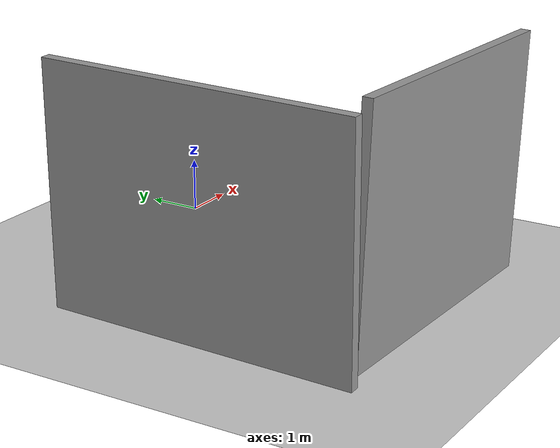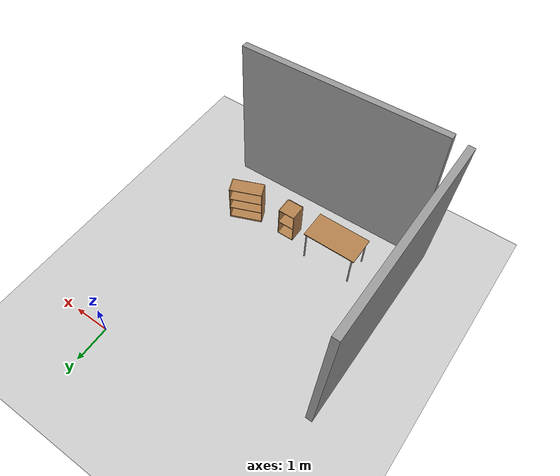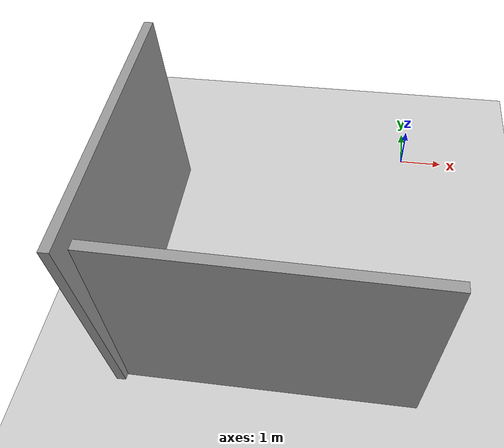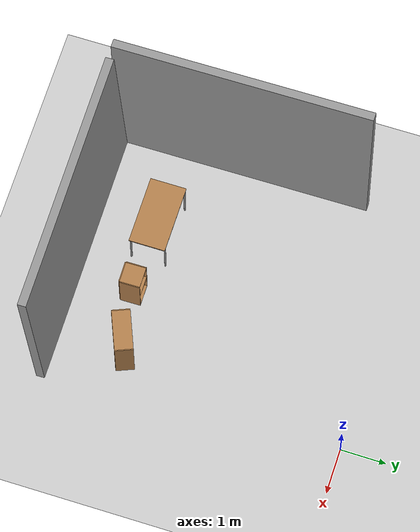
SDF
<sdf version="1.6">
 <world name="default">
  <light name="sun" type="directional">
   <pose>0 0 10 0 -0 0</pose>
   <diffuse>0.8 0.8 0.8 1</diffuse>
   <specular>0.2 0.2 0.2 1</specular>
   <attenuation>
    <range>1000</range>
    <constant>0.9</constant>
    <linear>0.01</linear>
    <quadratic>0.001</quadratic>
   </attenuation>
   <direction>-0.5 0.1 -0.9</direction>
  </light>
  <model name="ground_plane">
   <static>1</static>
   <link name="link">
    <collision name="collision">
     <geometry><plane><normal>0 0 1</normal><size>100 100</size></plane></geometry>
     <surface>
      <contact><collide_bitmask>65535</collide_bitmask></contact>
      <friction><ode><mu>100</mu><mu2>50</mu2></ode></friction>
     </surface>
    </collision>
    <visual name="visual">
     <cast_shadows>0</cast_shadows>
     <geometry><plane><normal>0 0 1</normal><size>100 100</size></plane></geometry>
     <material>
      <script><uri>file://media/materials/scripts/gazebo.material</uri><name>Gazebo/Grey</name></script>
     </material>
    </visual>
   </link>
  </model>
  <gravity>0 0 -9.8</gravity>
  <magnetic_field>6e-06 2.3e-05 -4.2e-05</magnetic_field>
  <atmosphere type="adiabatic"/>
  <physics name="default_physics" default="0" type="ode">
   <max_step_size>0.001</max_step_size>
   <real_time_factor>1</real_time_factor>
   <real_time_update_rate>1000</real_time_update_rate>
  </physics>
  <scene><ambient>0.4 0.4 0.4 1</ambient><background>0.7 0.7 0.7 1</background><shadows>1</shadows></scene>
  <audio><device>default</device></audio>
  <spherical_coordinates>
   <surface_model>EARTH_WGS84</surface_model>
   <latitude_deg>0</latitude_deg>
   <longitude_deg>0</longitude_deg>
   <elevation>0</elevation>
   <heading_deg>0</heading_deg>
  </spherical_coordinates>
  <model name="bookshelf">
   <static>1</static>
   <link name="link">
    <inertial><mass>1</mass></inertial>
    <collision name="back">
     <pose>0 0.005 0.6 0 -0 0</pose>
     <geometry><box><size>0.9 0.01 1.2</size></box></geometry>
    </collision>
    <visual name="visual1">
     <pose>0 0.005 0.6 0 -0 0</pose>
     <geometry><box><size>0.9 0.01 1.2</size></box></geometry>
     <material>
      <script><uri>file://media/materials/scripts/gazebo.material</uri><name>Gazebo/Wood</name></script>
     </material>
    </visual>
    <collision name="left_side">
     <pose>0.45 -0.195 0.6 0 -0 0</pose>
     <geometry><box><size>0.02 0.4 1.2</size></box></geometry>
    </collision>
    <visual name="visual2">
     <pose>0.45 -0.195 0.6 0 -0 0</pose>
     <geometry><box><size>0.02 0.4 1.2</size></box></geometry>
     <material>
      <script><uri>file://media/materials/scripts/gazebo.material</uri><name>Gazebo/Wood</name></script>
     </material>
    </visual>
    <collision name="right_side">
     <pose>-0.45 -0.195 0.6 0 -0 0</pose>
     <geometry><box><size>0.02 0.4 1.2</size></box></geometry>
    </collision>
    <visual name="visual3">
     <pose>-0.45 -0.195 0.6 0 -0 0</pose>
     <geometry><box><size>0.02 0.4 1.2</size></box></geometry>
     <material>
      <script><uri>file://media/materials/scripts/gazebo.material</uri><name>Gazebo/Wood</name></script>
     </material>
    </visual>
    <collision name="bottom">
     <pose>0 -0.195 0.03 0 -0 0</pose>
     <geometry><box><size>0.88 0.4 0.06</size></box></geometry>
    </collision>
    <visual name="visual4">
     <pose>0 -0.195 0.03 0 -0 0</pose>
     <geometry><box><size>0.88 0.4 0.06</size></box></geometry>
     <material>
      <script><uri>file://media/materials/scripts/gazebo.material</uri><name>Gazebo/Wood</name></script>
     </material>
    </visual>
    <collision name="top">
     <pose>0 -0.195 1.19 0 -0 0</pose>
     <geometry><box><size>0.88 0.4 0.02</size></box></geometry>
    </collision>
    <visual name="visual5">
     <pose>0 -0.195 1.19 0 -0 0</pose>
     <geometry><box><size>0.88 0.4 0.02</size></box></geometry>
     <material>
      <script><uri>file://media/materials/scripts/gazebo.material</uri><name>Gazebo/Wood</name></script>
     </material>
    </visual>
    <collision name="low_shelf">
     <pose>0 -0.195 0.43 0 -0 0</pose>
     <geometry><box><size>0.88 0.4 0.02</size></box></geometry>
    </collision>
    <visual name="visual6">
     <pose>0 -0.195 0.43 0 -0 0</pose>
     <geometry><box><size>0.88 0.4 0.02</size></box></geometry>
     <material>
      <script><uri>file://media/materials/scripts/gazebo.material</uri><name>Gazebo/Wood</name></script>
     </material>
    </visual>
    <collision name="high_shelf">
     <pose>0 -0.195 0.8 0 -0 0</pose>
     <geometry><box><size>0.88 0.4 0.02</size></box></geometry>
    </collision>
    <visual name="visual7">
     <pose>0 -0.195 0.8 0 -0 0</pose>
     <geometry><box><size>0.88 0.4 0.02</size></box></geometry>
     <material>
      <script><uri>file://media/materials/scripts/gazebo.material</uri><name>Gazebo/Wood</name></script>
     </material>
    </visual>
   </link>
   <pose>-0.678911 -5.20502 0 0 0 -2.75114</pose>
  </model>
  <model name="cabinet">
   <static>1</static>
   <link name="cabinet_bottom_plate">
    <inertial>
     <pose>0 0 -1 0 -0 0</pose>
     <inertia><ixx>2.05</ixx><ixy>0</ixy><ixz>0</ixz><iyy>2.05</iyy><iyz>0</iyz><izz>2.05</izz></inertia>
     <mass>25</mass>
    </inertial>
    <collision name="cabinet_bottom_plate_geom">
     <pose>0 0 0.01 0 -0 0</pose>
     <geometry><box><size>0.45 0.45 0.02</size></box></geometry>
    </collision>
    <visual name="cabinet_bottom_plate_geom_visual">
     <pose>0 0 0.01 0 -0 0</pose>
     <geometry><box><size>0.45 0.45 0.02</size></box></geometry>
     <material>
      <script><uri>file://media/materials/scripts/gazebo.material</uri><name>Gazebo/Wood</name></script>
     </material>
    </visual>
    <collision name="cabinet_bottom_plate_geom_cabinet_back_plate">
     <pose>0.235 0 0.51 0 -0 0</pose>
     <geometry><box><size>0.02 0.45 1.02</size></box></geometry>
    </collision>
    <visual name="cabinet_bottom_plate_geom_cabinet_back_plate_visual">
     <pose>0.235 0 0.51 0 -0 0</pose>
     <geometry><box><size>0.02 0.45 1.02</size></box></geometry>
     <material>
      <script><uri>file://media/materials/scripts/gazebo.material</uri><name>Gazebo/Wood</name></script>
     </material>
    </visual>
    <collision name="cabinet_bottom_plate_geom_cabinet_left_plate">
     <pose>0 0.235 0.51 0 -0 0</pose>
     <geometry><box><size>0.45 0.02 1.02</size></box></geometry>
    </collision>
    <visual name="cabinet_bottom_plate_geom_cabinet_left_plate_visual">
     <pose>0 0.235 0.51 0 -0 0</pose>
     <geometry><box><size>0.45 0.02 1.02</size></box></geometry>
     <material>
      <script><uri>file://media/materials/scripts/gazebo.material</uri><name>Gazebo/Wood</name></script>
     </material>
    </visual>
    <collision name="cabinet_bottom_plate_geom_cabinet_middle_plate">
     <pose>0 0 0.51 0 -0 0</pose>
     <geometry><box><size>0.45 0.45 0.02</size></box></geometry>
    </collision>
    <visual name="cabinet_bottom_plate_geom_cabinet_middle_plate_visual">
     <pose>0 0 0.51 0 -0 0</pose>
     <geometry><box><size>0.45 0.45 0.02</size></box></geometry>
     <material>
      <script><uri>file://media/materials/scripts/gazebo.material</uri><name>Gazebo/Wood</name></script>
     </material>
    </visual>
    <collision name="cabinet_bottom_plate_geom_cabinet_right_plate">
     <pose>0 -0.235 0.51 0 -0 0</pose>
     <geometry><box><size>0.45 0.02 1.02</size></box></geometry>
    </collision>
    <visual name="cabinet_bottom_plate_geom_cabinet_right_plate_visual">
     <pose>0 -0.235 0.51 0 -0 0</pose>
     <geometry><box><size>0.45 0.02 1.02</size></box></geometry>
     <material>
      <script><uri>file://media/materials/scripts/gazebo.material</uri><name>Gazebo/Wood</name></script>
     </material>
    </visual>
    <collision name="cabinet_bottom_plate_geom_cabinet_top_plate">
     <pose>0 0 1.01 0 -0 0</pose>
     <geometry><box><size>0.45 0.45 0.02</size></box></geometry>
    </collision>
    <visual name="cabinet_bottom_plate_geom_cabinet_top_plate_visual">
     <pose>0 0 1.01 0 -0 0</pose>
     <geometry><box><size>0.45 0.45 0.02</size></box></geometry>
     <material>
      <script><uri>file://media/materials/scripts/gazebo.material</uri><name>Gazebo/Wood</name></script>
     </material>
    </visual>
   </link>
   <pose>-2.06046 -5.22665 0 0 0 -1.5616</pose>
  </model>
  <model name="table">
   <static>1</static>
   <link name="link">
    <collision name="surface">
     <pose>0 0 1 0 -0 0</pose>
     <geometry><box><size>1.5 0.8 0.03</size></box></geometry>
     <surface><friction><ode><mu>0.6</mu><mu2>0.6</mu2></ode></friction></surface>
    </collision>
    <visual name="visual1">
     <pose>0 0 1 0 -0 0</pose>
     <geometry><box><size>1.5 0.8 0.03</size></box></geometry>
     <material>
      <script><uri>file://media/materials/scripts/gazebo.material</uri><name>Gazebo/Wood</name></script>
     </material>
    </visual>
    <collision name="front_left_leg">
     <pose>0.68 0.38 0.5 0 -0 0</pose>
     <geometry><cylinder><radius>0.02</radius><length>1</length></cylinder></geometry>
    </collision>
    <visual name="front_left_leg">
     <pose>0.68 0.38 0.5 0 -0 0</pose>
     <geometry><cylinder><radius>0.02</radius><length>1</length></cylinder></geometry>
     <material>
      <script><uri>file://media/materials/scripts/gazebo.material</uri><name>Gazebo/Grey</name></script>
     </material>
    </visual>
    <collision name="front_right_leg">
     <pose>0.68 -0.38 0.5 0 -0 0</pose>
     <geometry><cylinder><radius>0.02</radius><length>1</length></cylinder></geometry>
    </collision>
    <visual name="front_right_leg">
     <pose>0.68 -0.38 0.5 0 -0 0</pose>
     <geometry><cylinder><radius>0.02</radius><length>1</length></cylinder></geometry>
     <material>
      <script><uri>file://media/materials/scripts/gazebo.material</uri><name>Gazebo/Grey</name></script>
     </material>
    </visual>
    <collision name="back_right_leg">
     <pose>-0.68 -0.38 0.5 0 -0 0</pose>
     <geometry><cylinder><radius>0.02</radius><length>1</length></cylinder></geometry>
    </collision>
    <visual name="back_right_leg">
     <pose>-0.68 -0.38 0.5 0 -0 0</pose>
     <geometry><cylinder><radius>0.02</radius><length>1</length></cylinder></geometry>
     <material>
      <script><uri>file://media/materials/scripts/gazebo.material</uri><name>Gazebo/Grey</name></script>
     </material>
    </visual>
    <collision name="back_left_leg">
     <pose>-0.68 0.38 0.5 0 -0 0</pose>
     <geometry><cylinder><radius>0.02</radius><length>1</length></cylinder></geometry>
    </collision>
    <visual name="back_left_leg">
     <pose>-0.68 0.38 0.5 0 -0 0</pose>
     <geometry><cylinder><radius>0.02</radius><length>1</length></cylinder></geometry>
     <material>
      <script><uri>file://media/materials/scripts/gazebo.material</uri><name>Gazebo/Grey</name></script>
     </material>
    </visual>
   </link>
   <pose>-3.53147 -5.1549 0 0 -0 0</pose>
  </model>
  <model name="unit_box">
   <pose>-2.39656 -6.5835 2.2575 0.032811 0.026069 0.001358</pose>
   <link name="unit_box::link">
    <inertial>
     <mass>1</mass>
     <inertia>
      <ixx>0.166667</ixx>
      <ixy>0</ixy>
      <ixz>0</ixz>
      <iyy>0.166667</iyy>
      <iyz>0</iyz>
      <izz>0.166667</izz>
     </inertia>
    </inertial>
    <collision name="collision"><geometry><box><size>5.63682 0.184015 4.32525</size></box></geometry></collision>
    <visual name="visual">
     <geometry><box><size>5.63682 0.184015 4.32525</size></box></geometry>
     <material>
      <script><name>Gazebo/Grey</name><uri>file://media/materials/scripts/gazebo.material</uri></script>
     </material>
    </visual>
   </link>
  </model>
  <model name="unit_box_clone">
   <pose>-5.49286 -3.88742 2.24077 0.033142 0.020236 -1.57381</pose>
   <link name="unit_box_clone::link">
    <inertial>
     <mass>1</mass>
     <inertia>
      <ixx>0.166667</ixx>
      <ixy>0</ixy>
      <ixz>0</ixz>
      <iyy>0.166667</iyy>
      <iyz>0</iyz>
      <izz>0.166667</izz>
     </inertia>
    </inertial>
    <collision name="collision"><geometry><box><size>5.63682 0.184015 4.32525</size></box></geometry></collision>
    <visual name="visual">
     <geometry><box><size>5.63682 0.184015 4.32525</size></box></geometry>
     <material>
      <script><name>Gazebo/Grey</name><uri>file://media/materials/scripts/gazebo.material</uri></script>
     </material>
    </visual>
   </link>
  </model>
 </world>
</sdf>
